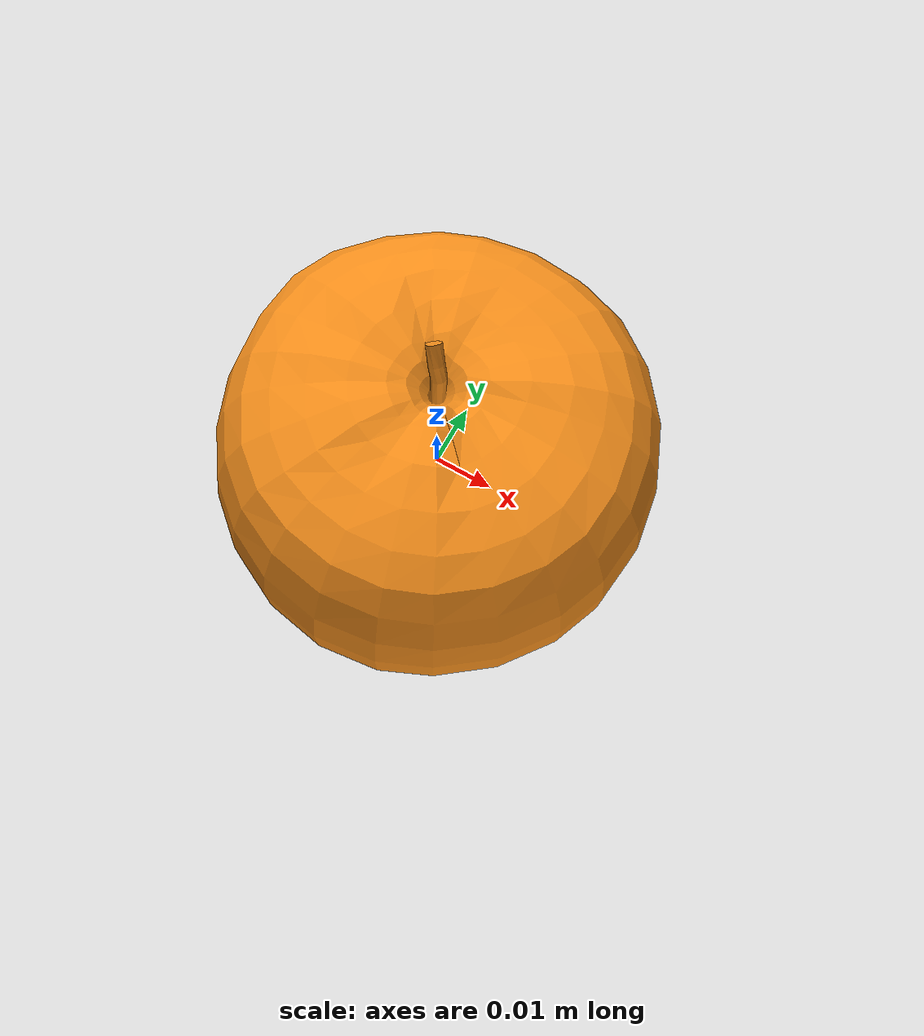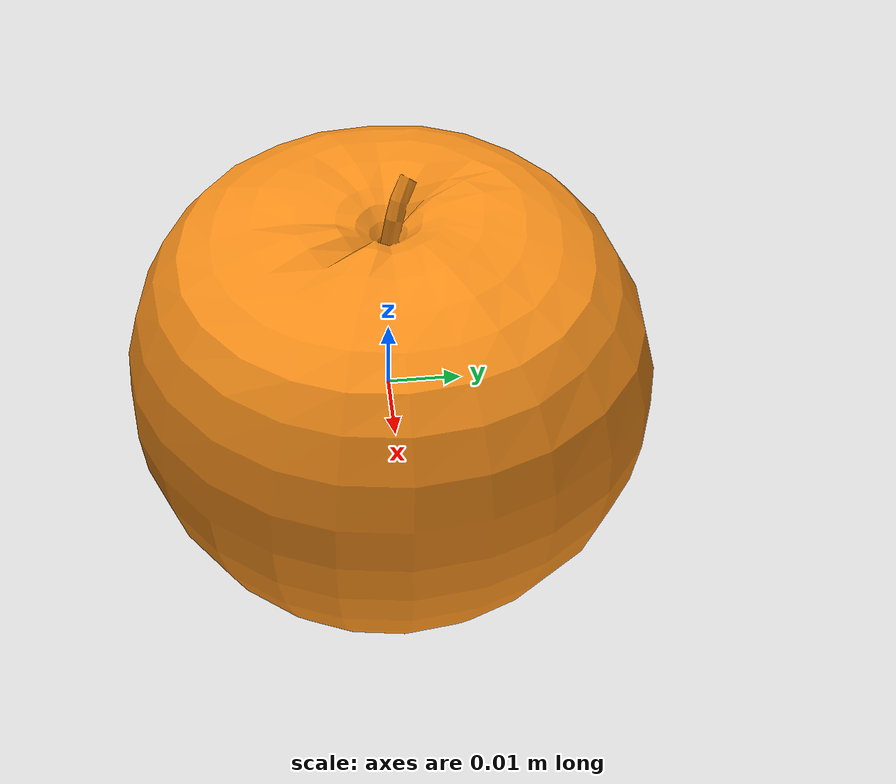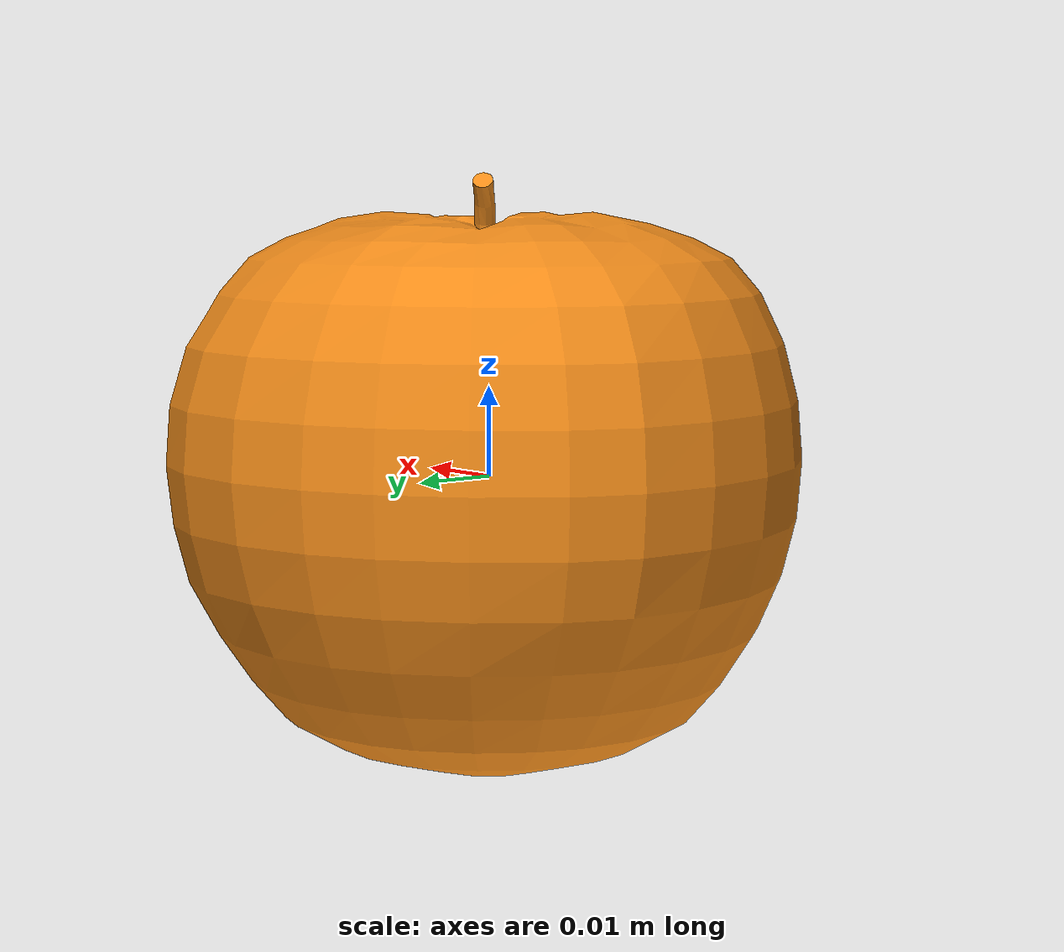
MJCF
<mujoco model="orange_13">
  <asset>
    <mesh file="visual/model_normalized_0.obj" name="orange_2_normalized_0_vis" scale="0.06999999999999997 0.06999999999999997 0.06999999999999997" refquat="1.0 0.0 0.0 0.0" />
    <mesh file="collision/model_normalized_collision_22.obj" name="orange_2_normalized_collision_22._coll" scale="0.06999999999999997 0.06999999999999997 0.06999999999999997" refquat="1.0 0.0 0.0 0.0" />
    <mesh file="collision/model_normalized_collision_23.obj" name="orange_2_normalized_collision_23._coll" scale="0.06999999999999997 0.06999999999999997 0.06999999999999997" refquat="1.0 0.0 0.0 0.0" />
    <mesh file="collision/model_normalized_collision_21.obj" name="orange_2_normalized_collision_21._coll" scale="0.06999999999999997 0.06999999999999997 0.06999999999999997" refquat="1.0 0.0 0.0 0.0" />
    <mesh file="collision/model_normalized_collision_20.obj" name="orange_2_normalized_collision_20._coll" scale="0.06999999999999997 0.06999999999999997 0.06999999999999997" refquat="1.0 0.0 0.0 0.0" />
    <mesh file="collision/model_normalized_collision_24.obj" name="orange_2_normalized_collision_24._coll" scale="0.06999999999999997 0.06999999999999997 0.06999999999999997" refquat="1.0 0.0 0.0 0.0" />
    <mesh file="collision/model_normalized_collision_30.obj" name="orange_2_normalized_collision_30._coll" scale="0.06999999999999997 0.06999999999999997 0.06999999999999997" refquat="1.0 0.0 0.0 0.0" />
    <mesh file="collision/model_normalized_collision_18.obj" name="orange_2_normalized_collision_18._coll" scale="0.06999999999999997 0.06999999999999997 0.06999999999999997" refquat="1.0 0.0 0.0 0.0" />
    <mesh file="collision/model_normalized_collision_19.obj" name="orange_2_normalized_collision_19._coll" scale="0.06999999999999997 0.06999999999999997 0.06999999999999997" refquat="1.0 0.0 0.0 0.0" />
    <mesh file="collision/model_normalized_collision_31.obj" name="orange_2_normalized_collision_31._coll" scale="0.06999999999999997 0.06999999999999997 0.06999999999999997" refquat="1.0 0.0 0.0 0.0" />
    <mesh file="collision/model_normalized_collision_25.obj" name="orange_2_normalized_collision_25._coll" scale="0.06999999999999997 0.06999999999999997 0.06999999999999997" refquat="1.0 0.0 0.0 0.0" />
    <mesh file="collision/model_normalized_collision_27.obj" name="orange_2_normalized_collision_27._coll" scale="0.06999999999999997 0.06999999999999997 0.06999999999999997" refquat="1.0 0.0 0.0 0.0" />
    <mesh file="collision/model_normalized_collision_26.obj" name="orange_2_normalized_collision_26._coll" scale="0.06999999999999997 0.06999999999999997 0.06999999999999997" refquat="1.0 0.0 0.0 0.0" />
    <mesh file="collision/model_normalized_collision_9.obj" name="orange_2_normalized_collision_9._coll" scale="0.06999999999999997 0.06999999999999997 0.06999999999999997" refquat="1.0 0.0 0.0 0.0" />
    <mesh file="collision/model_normalized_collision_8.obj" name="orange_2_normalized_collision_8._coll" scale="0.06999999999999997 0.06999999999999997 0.06999999999999997" refquat="1.0 0.0 0.0 0.0" />
    <mesh file="collision/model_normalized_collision_6.obj" name="orange_2_normalized_collision_6._coll" scale="0.06999999999999997 0.06999999999999997 0.06999999999999997" refquat="1.0 0.0 0.0 0.0" />
    <mesh file="collision/model_normalized_collision_7.obj" name="orange_2_normalized_collision_7._coll" scale="0.06999999999999997 0.06999999999999997 0.06999999999999997" refquat="1.0 0.0 0.0 0.0" />
    <mesh file="collision/model_normalized_collision_5.obj" name="orange_2_normalized_collision_5._coll" scale="0.06999999999999997 0.06999999999999997 0.06999999999999997" refquat="1.0 0.0 0.0 0.0" />
    <mesh file="collision/model_normalized_collision_4.obj" name="orange_2_normalized_collision_4._coll" scale="0.06999999999999997 0.06999999999999997 0.06999999999999997" refquat="1.0 0.0 0.0 0.0" />
    <mesh file="collision/model_normalized_collision_0.obj" name="orange_2_normalized_collision_0._coll" scale="0.06999999999999997 0.06999999999999997 0.06999999999999997" refquat="1.0 0.0 0.0 0.0" />
    <mesh file="collision/model_normalized_collision_1.obj" name="orange_2_normalized_collision_1._coll" scale="0.06999999999999997 0.06999999999999997 0.06999999999999997" refquat="1.0 0.0 0.0 0.0" />
    <mesh file="collision/model_normalized_collision_3.obj" name="orange_2_normalized_collision_3._coll" scale="0.06999999999999997 0.06999999999999997 0.06999999999999997" refquat="1.0 0.0 0.0 0.0" />
    <mesh file="collision/model_normalized_collision_2.obj" name="orange_2_normalized_collision_2._coll" scale="0.06999999999999997 0.06999999999999997 0.06999999999999997" refquat="1.0 0.0 0.0 0.0" />
    <mesh file="collision/model_normalized_collision_17.obj" name="orange_2_normalized_collision_17._coll" scale="0.06999999999999997 0.06999999999999997 0.06999999999999997" refquat="1.0 0.0 0.0 0.0" />
    <mesh file="collision/model_normalized_collision_16.obj" name="orange_2_normalized_collision_16._coll" scale="0.06999999999999997 0.06999999999999997 0.06999999999999997" refquat="1.0 0.0 0.0 0.0" />
    <mesh file="collision/model_normalized_collision_28.obj" name="orange_2_normalized_collision_28._coll" scale="0.06999999999999997 0.06999999999999997 0.06999999999999997" refquat="1.0 0.0 0.0 0.0" />
    <mesh file="collision/model_normalized_collision_14.obj" name="orange_2_normalized_collision_14._coll" scale="0.06999999999999997 0.06999999999999997 0.06999999999999997" refquat="1.0 0.0 0.0 0.0" />
    <mesh file="collision/model_normalized_collision_15.obj" name="orange_2_normalized_collision_15._coll" scale="0.06999999999999997 0.06999999999999997 0.06999999999999997" refquat="1.0 0.0 0.0 0.0" />
    <mesh file="collision/model_normalized_collision_29.obj" name="orange_2_normalized_collision_29._coll" scale="0.06999999999999997 0.06999999999999997 0.06999999999999997" refquat="1.0 0.0 0.0 0.0" />
    <mesh file="collision/model_normalized_collision_11.obj" name="orange_2_normalized_collision_11._coll" scale="0.06999999999999997 0.06999999999999997 0.06999999999999997" refquat="1.0 0.0 0.0 0.0" />
    <mesh file="collision/model_normalized_collision_10.obj" name="orange_2_normalized_collision_10._coll" scale="0.06999999999999997 0.06999999999999997 0.06999999999999997" refquat="1.0 0.0 0.0 0.0" />
    <mesh file="collision/model_normalized_collision_12.obj" name="orange_2_normalized_collision_12._coll" scale="0.06999999999999997 0.06999999999999997 0.06999999999999997" refquat="1.0 0.0 0.0 0.0" />
    <mesh file="collision/model_normalized_collision_13.obj" name="orange_2_normalized_collision_13._coll" scale="0.06999999999999997 0.06999999999999997 0.06999999999999997" refquat="1.0 0.0 0.0 0.0" />
    <texture type="2d" name="orange_20" file="visual/image0.png" />
    <material name="None_orange_2" texture="orange_20" specular="0.5" shininess="0.25" />
  </asset>
  <worldbody>
    <body name="body_obj_orange_2">
    <inertial pos="0 0 0" mass="1" diaginertia="0.01 0.01 0.01"/>
      <freejoint /><body name="object_orange_2">
        <geom solimp="0.998 0.998 0.001" solref="0.001 1" density="100" friction="0.95 0.3 0.1" type="mesh" mesh="orange_2_normalized_0_vis" conaffinity="0" contype="0" group="2" material="None_orange_2" />
        <geom solimp="0.998 0.998 0.001" solref="0.001 1" density="100" friction="0.95 0.3 0.1" type="mesh" mesh="orange_2_normalized_collision_22._coll" group="3" rgba="0.8 0.8 0.8 0.0" />
        <geom solimp="0.998 0.998 0.001" solref="0.001 1" density="100" friction="0.95 0.3 0.1" type="mesh" mesh="orange_2_normalized_collision_23._coll" group="3" rgba="0.8 0.8 0.8 0.0" />
        <geom solimp="0.998 0.998 0.001" solref="0.001 1" density="100" friction="0.95 0.3 0.1" type="mesh" mesh="orange_2_normalized_collision_21._coll" group="3" rgba="0.8 0.8 0.8 0.0" />
        <geom solimp="0.998 0.998 0.001" solref="0.001 1" density="100" friction="0.95 0.3 0.1" type="mesh" mesh="orange_2_normalized_collision_20._coll" group="3" rgba="0.8 0.8 0.8 0.0" />
        <geom solimp="0.998 0.998 0.001" solref="0.001 1" density="100" friction="0.95 0.3 0.1" type="mesh" mesh="orange_2_normalized_collision_24._coll" group="3" rgba="0.8 0.8 0.8 0.0" />
        <geom solimp="0.998 0.998 0.001" solref="0.001 1" density="100" friction="0.95 0.3 0.1" type="mesh" mesh="orange_2_normalized_collision_30._coll" group="3" rgba="0.8 0.8 0.8 0.0" />
        <geom solimp="0.998 0.998 0.001" solref="0.001 1" density="100" friction="0.95 0.3 0.1" type="mesh" mesh="orange_2_normalized_collision_18._coll" group="3" rgba="0.8 0.8 0.8 0.0" />
        <geom solimp="0.998 0.998 0.001" solref="0.001 1" density="100" friction="0.95 0.3 0.1" type="mesh" mesh="orange_2_normalized_collision_19._coll" group="3" rgba="0.8 0.8 0.8 0.0" />
        <geom solimp="0.998 0.998 0.001" solref="0.001 1" density="100" friction="0.95 0.3 0.1" type="mesh" mesh="orange_2_normalized_collision_31._coll" group="3" rgba="0.8 0.8 0.8 0.0" />
        <geom solimp="0.998 0.998 0.001" solref="0.001 1" density="100" friction="0.95 0.3 0.1" type="mesh" mesh="orange_2_normalized_collision_25._coll" group="3" rgba="0.8 0.8 0.8 0.0" />
        <geom solimp="0.998 0.998 0.001" solref="0.001 1" density="100" friction="0.95 0.3 0.1" type="mesh" mesh="orange_2_normalized_collision_27._coll" group="3" rgba="0.8 0.8 0.8 0.0" />
        <geom solimp="0.998 0.998 0.001" solref="0.001 1" density="100" friction="0.95 0.3 0.1" type="mesh" mesh="orange_2_normalized_collision_26._coll" group="3" rgba="0.8 0.8 0.8 0.0" />
        <geom solimp="0.998 0.998 0.001" solref="0.001 1" density="100" friction="0.95 0.3 0.1" type="mesh" mesh="orange_2_normalized_collision_9._coll" group="3" rgba="0.8 0.8 0.8 0.0" />
        <geom solimp="0.998 0.998 0.001" solref="0.001 1" density="100" friction="0.95 0.3 0.1" type="mesh" mesh="orange_2_normalized_collision_8._coll" group="3" rgba="0.8 0.8 0.8 0.0" />
        <geom solimp="0.998 0.998 0.001" solref="0.001 1" density="100" friction="0.95 0.3 0.1" type="mesh" mesh="orange_2_normalized_collision_6._coll" group="3" rgba="0.8 0.8 0.8 0.0" />
        <geom solimp="0.998 0.998 0.001" solref="0.001 1" density="100" friction="0.95 0.3 0.1" type="mesh" mesh="orange_2_normalized_collision_7._coll" group="3" rgba="0.8 0.8 0.8 0.0" />
        <geom solimp="0.998 0.998 0.001" solref="0.001 1" density="100" friction="0.95 0.3 0.1" type="mesh" mesh="orange_2_normalized_collision_5._coll" group="3" rgba="0.8 0.8 0.8 0.0" />
        <geom solimp="0.998 0.998 0.001" solref="0.001 1" density="100" friction="0.95 0.3 0.1" type="mesh" mesh="orange_2_normalized_collision_4._coll" group="3" rgba="0.8 0.8 0.8 0.0" />
        <geom solimp="0.998 0.998 0.001" solref="0.001 1" density="100" friction="0.95 0.3 0.1" type="mesh" mesh="orange_2_normalized_collision_0._coll" group="3" rgba="0.8 0.8 0.8 0.0" />
        <geom solimp="0.998 0.998 0.001" solref="0.001 1" density="100" friction="0.95 0.3 0.1" type="mesh" mesh="orange_2_normalized_collision_1._coll" group="3" rgba="0.8 0.8 0.8 0.0" />
        <geom solimp="0.998 0.998 0.001" solref="0.001 1" density="100" friction="0.95 0.3 0.1" type="mesh" mesh="orange_2_normalized_collision_3._coll" group="3" rgba="0.8 0.8 0.8 0.0" />
        <geom solimp="0.998 0.998 0.001" solref="0.001 1" density="100" friction="0.95 0.3 0.1" type="mesh" mesh="orange_2_normalized_collision_2._coll" group="3" rgba="0.8 0.8 0.8 0.0" />
        <geom solimp="0.998 0.998 0.001" solref="0.001 1" density="100" friction="0.95 0.3 0.1" type="mesh" mesh="orange_2_normalized_collision_17._coll" group="3" rgba="0.8 0.8 0.8 0.0" />
        <geom solimp="0.998 0.998 0.001" solref="0.001 1" density="100" friction="0.95 0.3 0.1" type="mesh" mesh="orange_2_normalized_collision_16._coll" group="3" rgba="0.8 0.8 0.8 0.0" />
        <geom solimp="0.998 0.998 0.001" solref="0.001 1" density="100" friction="0.95 0.3 0.1" type="mesh" mesh="orange_2_normalized_collision_28._coll" group="3" rgba="0.8 0.8 0.8 0.0" />
        <geom solimp="0.998 0.998 0.001" solref="0.001 1" density="100" friction="0.95 0.3 0.1" type="mesh" mesh="orange_2_normalized_collision_14._coll" group="3" rgba="0.8 0.8 0.8 0.0" />
        <geom solimp="0.998 0.998 0.001" solref="0.001 1" density="100" friction="0.95 0.3 0.1" type="mesh" mesh="orange_2_normalized_collision_15._coll" group="3" rgba="0.8 0.8 0.8 0.0" />
        <geom solimp="0.998 0.998 0.001" solref="0.001 1" density="100" friction="0.95 0.3 0.1" type="mesh" mesh="orange_2_normalized_collision_29._coll" group="3" rgba="0.8 0.8 0.8 0.0" />
        <geom solimp="0.998 0.998 0.001" solref="0.001 1" density="100" friction="0.95 0.3 0.1" type="mesh" mesh="orange_2_normalized_collision_11._coll" group="3" rgba="0.8 0.8 0.8 0.0" />
        <geom solimp="0.998 0.998 0.001" solref="0.001 1" density="100" friction="0.95 0.3 0.1" type="mesh" mesh="orange_2_normalized_collision_10._coll" group="3" rgba="0.8 0.8 0.8 0.0" />
        <geom solimp="0.998 0.998 0.001" solref="0.001 1" density="100" friction="0.95 0.3 0.1" type="mesh" mesh="orange_2_normalized_collision_12._coll" group="3" rgba="0.8 0.8 0.8 0.0" />
        <geom solimp="0.998 0.998 0.001" solref="0.001 1" density="100" friction="0.95 0.3 0.1" type="mesh" mesh="orange_2_normalized_collision_13._coll" group="3" rgba="0.8 0.8 0.8 0.0" />
      </body>
      <site rgba="0 0 0 0" size="0.005" pos="-0.00014001959999999946 4.1574399999999823e-05 -0.03284813209999998" name="bottom_site_orange_2" />
      <site rgba="0 0 0 0" size="0.005" pos="-0.00014001959999999946 4.1574399999999823e-05 0.033095353899999985" name="top_site_orange_2" />
      <site rgba="0 0 0 0" size="0.005" pos="0.03373366429999999 0.03439716419999998 0.00012361090000000013" name="horizontal_radius_site_orange_2" />
    </body>
  </worldbody>
</mujoco>
